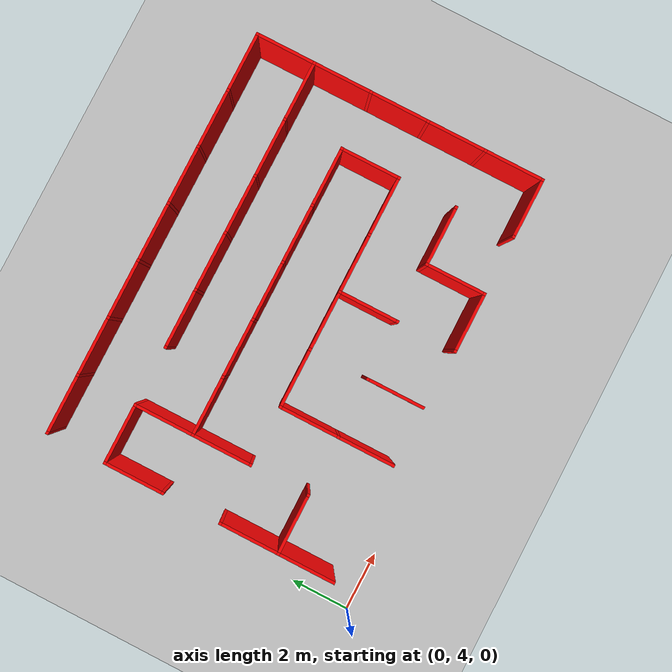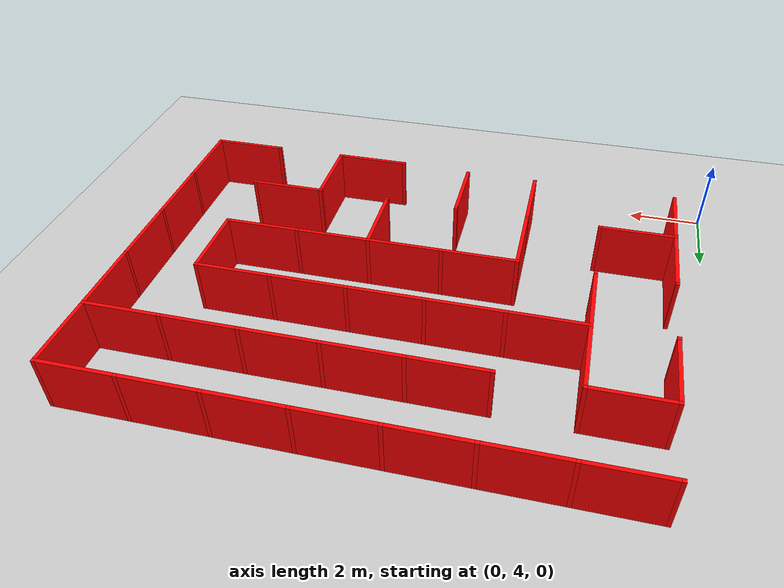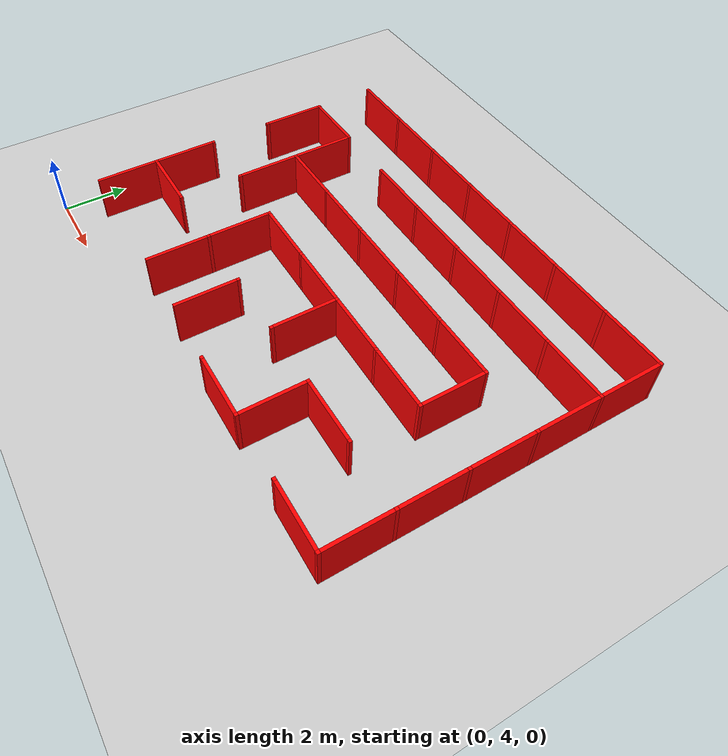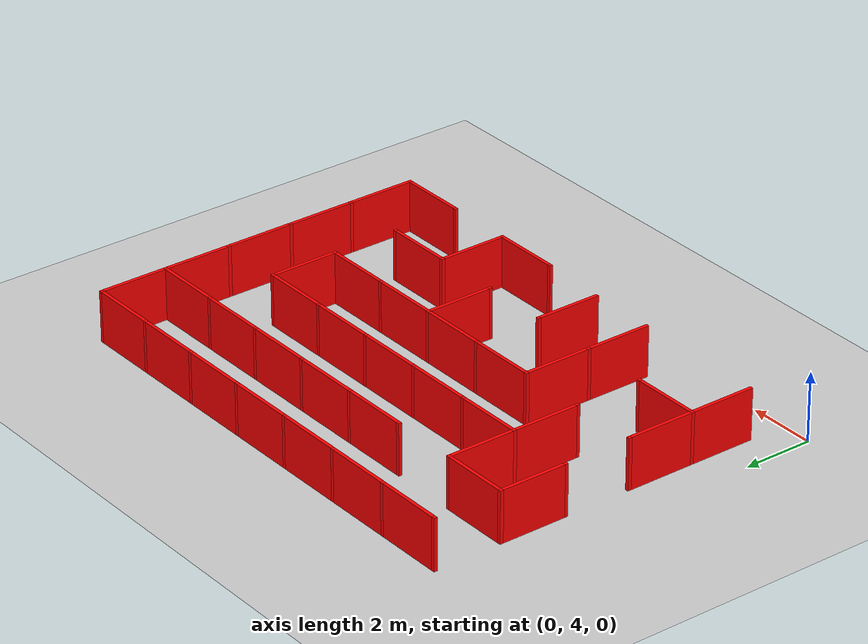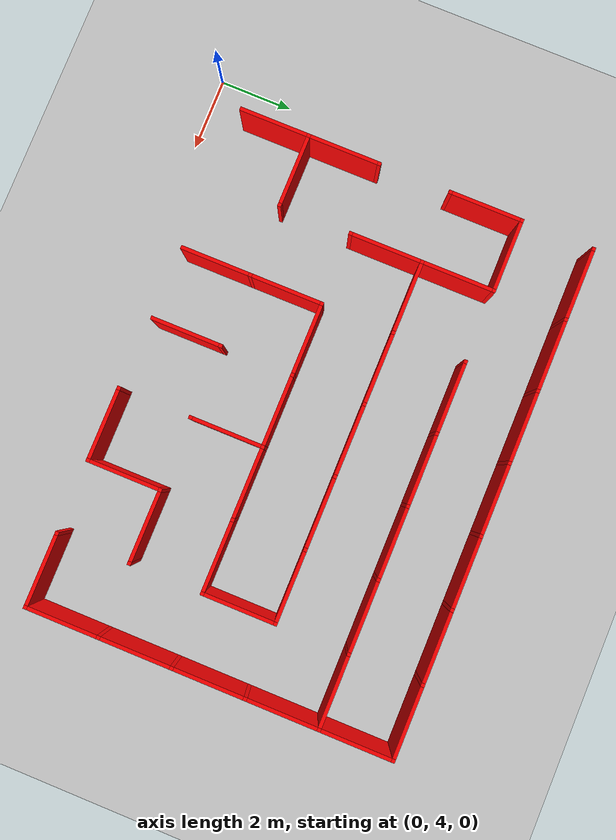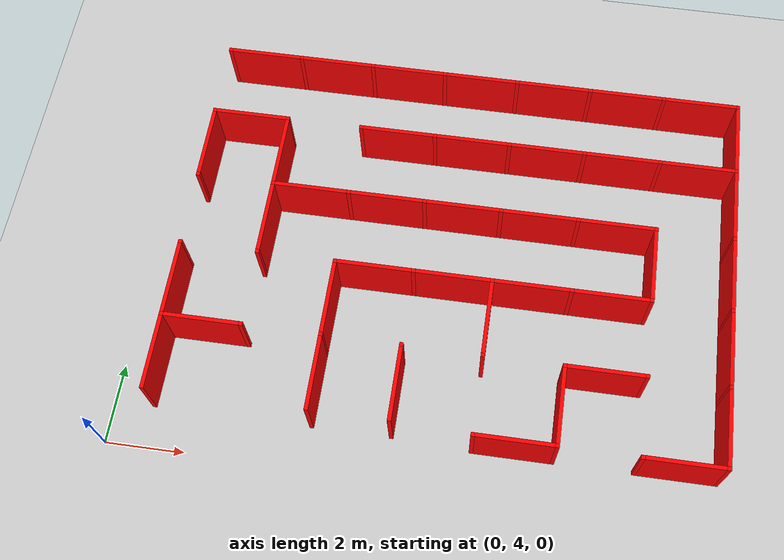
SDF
<sdf version="1.7">
 <world name="empty">
  <model name="ground_plane">
   <static>true</static>
   <link name="link">
    <collision name="collision1">
     <geometry><plane><normal>0 0 1</normal><size>1 1</size></plane></geometry>
    </collision>
    <visual name="visual1"><geometry><plane><normal>0 0 1</normal><size>100 100</size></plane></geometry></visual>
   </link>
  </model>
  <model name="Untitled">
   <link name="Wall_8_0_h">
    <collision name="Wall_0_Collision">
     <geometry><box><size>1.9 0.1 1.5</size></box></geometry>
     <pose>0 0 0.75 0 -0 0</pose>
    </collision>
    <visual name="Wall_0_Visual">
     <pose>0 0 0.75 0 -0 0</pose>
     <geometry><box><size>1.9 0.1 1.5</size></box></geometry>
     <material><ambient>1 0 0 1</ambient><diffuse>1 0 0 1</diffuse><specular>0.1 0.1 0.1 1</specular></material>
     <meta><layer>0</layer></meta>
    </visual>
    <pose>2 15 0 0 -0 0</pose>
   </link>
   <link name="Joint_1_15">
    <collision name="Wall_2_Collision">
     <geometry><box><size>0.1 0.1 1.5</size></box></geometry>
     <pose>0 0 0.75 0 -0 0</pose>
    </collision>
    <visual name="Wall_2_Visual">
     <pose>0 0 0.75 0 -0 0</pose>
     <geometry><box><size>0.1 0.1 1.5</size></box></geometry>
     <material><ambient>1 0 0 1</ambient><diffuse>1 0 0 1</diffuse><specular>0.1 0.1 0.1 1</specular></material>
     <meta><layer>0</layer></meta>
    </visual>
    <pose>1 15 0 0 -0 0</pose>
   </link>
   <link name="Wall_9_0_h">
    <collision name="Wall_0_Collision">
     <geometry><box><size>1.9 0.1 1.5</size></box></geometry>
     <pose>0 0 0.75 0 -0 0</pose>
    </collision>
    <visual name="Wall_0_Visual">
     <pose>0 0 0.75 0 -0 0</pose>
     <geometry><box><size>1.9 0.1 1.5</size></box></geometry>
     <material><ambient>1 0 0 1</ambient><diffuse>1 0 0 1</diffuse><specular>0.1 0.1 0.1 1</specular></material>
     <meta><layer>0</layer></meta>
    </visual>
    <pose>4 15 0 0 -0 0</pose>
   </link>
   <link name="Joint_3_15">
    <collision name="Wall_2_Collision">
     <geometry><box><size>0.1 0.1 1.5</size></box></geometry>
     <pose>0 0 0.75 0 -0 0</pose>
    </collision>
    <visual name="Wall_2_Visual">
     <pose>0 0 0.75 0 -0 0</pose>
     <geometry><box><size>0.1 0.1 1.5</size></box></geometry>
     <material><ambient>1 0 0 1</ambient><diffuse>1 0 0 1</diffuse><specular>0.1 0.1 0.1 1</specular></material>
     <meta><layer>0</layer></meta>
    </visual>
    <pose>3 15 0 0 -0 0</pose>
   </link>
   <link name="Wall_10_0_h">
    <collision name="Wall_0_Collision">
     <geometry><box><size>1.9 0.1 1.5</size></box></geometry>
     <pose>0 0 0.75 0 -0 0</pose>
    </collision>
    <visual name="Wall_0_Visual">
     <pose>0 0 0.75 0 -0 0</pose>
     <geometry><box><size>1.9 0.1 1.5</size></box></geometry>
     <material><ambient>1 0 0 1</ambient><diffuse>1 0 0 1</diffuse><specular>0.1 0.1 0.1 1</specular></material>
     <meta><layer>0</layer></meta>
    </visual>
    <pose>6 15 0 0 -0 0</pose>
   </link>
   <link name="Joint_5_15">
    <collision name="Wall_2_Collision">
     <geometry><box><size>0.1 0.1 1.5</size></box></geometry>
     <pose>0 0 0.75 0 -0 0</pose>
    </collision>
    <visual name="Wall_2_Visual">
     <pose>0 0 0.75 0 -0 0</pose>
     <geometry><box><size>0.1 0.1 1.5</size></box></geometry>
     <material><ambient>1 0 0 1</ambient><diffuse>1 0 0 1</diffuse><specular>0.1 0.1 0.1 1</specular></material>
     <meta><layer>0</layer></meta>
    </visual>
    <pose>5 15 0 0 -0 0</pose>
   </link>
   <link name="Wall_11_0_h">
    <collision name="Wall_0_Collision">
     <geometry><box><size>1.9 0.1 1.5</size></box></geometry>
     <pose>0 0 0.75 0 -0 0</pose>
    </collision>
    <visual name="Wall_0_Visual">
     <pose>0 0 0.75 0 -0 0</pose>
     <geometry><box><size>1.9 0.1 1.5</size></box></geometry>
     <material><ambient>1 0 0 1</ambient><diffuse>1 0 0 1</diffuse><specular>0.1 0.1 0.1 1</specular></material>
     <meta><layer>0</layer></meta>
    </visual>
    <pose>8 15 0 0 -0 0</pose>
   </link>
   <link name="Joint_7_15">
    <collision name="Wall_2_Collision">
     <geometry><box><size>0.1 0.1 1.5</size></box></geometry>
     <pose>0 0 0.75 0 -0 0</pose>
    </collision>
    <visual name="Wall_2_Visual">
     <pose>0 0 0.75 0 -0 0</pose>
     <geometry><box><size>0.1 0.1 1.5</size></box></geometry>
     <material><ambient>1 0 0 1</ambient><diffuse>1 0 0 1</diffuse><specular>0.1 0.1 0.1 1</specular></material>
     <meta><layer>0</layer></meta>
    </visual>
    <pose>7 15 0 0 -0 0</pose>
   </link>
   <link name="Wall_12_0_h">
    <collision name="Wall_0_Collision">
     <geometry><box><size>1.9 0.1 1.5</size></box></geometry>
     <pose>0 0 0.75 0 -0 0</pose>
    </collision>
    <visual name="Wall_0_Visual">
     <pose>0 0 0.75 0 -0 0</pose>
     <geometry><box><size>1.9 0.1 1.5</size></box></geometry>
     <material><ambient>1 0 0 1</ambient><diffuse>1 0 0 1</diffuse><specular>0.1 0.1 0.1 1</specular></material>
     <meta><layer>0</layer></meta>
    </visual>
    <pose>10 15 0 0 -0 0</pose>
   </link>
   <link name="Joint_9_15">
    <collision name="Wall_2_Collision">
     <geometry><box><size>0.1 0.1 1.5</size></box></geometry>
     <pose>0 0 0.75 0 -0 0</pose>
    </collision>
    <visual name="Wall_2_Visual">
     <pose>0 0 0.75 0 -0 0</pose>
     <geometry><box><size>0.1 0.1 1.5</size></box></geometry>
     <material><ambient>1 0 0 1</ambient><diffuse>1 0 0 1</diffuse><specular>0.1 0.1 0.1 1</specular></material>
     <meta><layer>0</layer></meta>
    </visual>
    <pose>9 15 0 0 -0 0</pose>
   </link>
   <link name="Wall_13_0_h">
    <collision name="Wall_0_Collision">
     <geometry><box><size>1.9 0.1 1.5</size></box></geometry>
     <pose>0 0 0.75 0 -0 0</pose>
    </collision>
    <visual name="Wall_0_Visual">
     <pose>0 0 0.75 0 -0 0</pose>
     <geometry><box><size>1.9 0.1 1.5</size></box></geometry>
     <material><ambient>1 0 0 1</ambient><diffuse>1 0 0 1</diffuse><specular>0.1 0.1 0.1 1</specular></material>
     <meta><layer>0</layer></meta>
    </visual>
    <pose>12 15 0 0 -0 0</pose>
   </link>
   <link name="Joint_11_15">
    <collision name="Wall_2_Collision">
     <geometry><box><size>0.1 0.1 1.5</size></box></geometry>
     <pose>0 0 0.75 0 -0 0</pose>
    </collision>
    <visual name="Wall_2_Visual">
     <pose>0 0 0.75 0 -0 0</pose>
     <geometry><box><size>0.1 0.1 1.5</size></box></geometry>
     <material><ambient>1 0 0 1</ambient><diffuse>1 0 0 1</diffuse><specular>0.1 0.1 0.1 1</specular></material>
     <meta><layer>0</layer></meta>
    </visual>
    <pose>11 15 0 0 -0 0</pose>
   </link>
   <link name="Wall_14_0_h">
    <collision name="Wall_0_Collision">
     <geometry><box><size>1.9 0.1 1.5</size></box></geometry>
     <pose>0 0 0.75 0 -0 0</pose>
    </collision>
    <visual name="Wall_0_Visual">
     <pose>0 0 0.75 0 -0 0</pose>
     <geometry><box><size>1.9 0.1 1.5</size></box></geometry>
     <material><ambient>1 0 0 1</ambient><diffuse>1 0 0 1</diffuse><specular>0.1 0.1 0.1 1</specular></material>
     <meta><layer>0</layer></meta>
    </visual>
    <pose>14 15 0 0 -0 0</pose>
   </link>
   <link name="Joint_13_15">
    <collision name="Wall_2_Collision">
     <geometry><box><size>0.1 0.1 1.5</size></box></geometry>
     <pose>0 0 0.75 0 -0 0</pose>
    </collision>
    <visual name="Wall_2_Visual">
     <pose>0 0 0.75 0 -0 0</pose>
     <geometry><box><size>0.1 0.1 1.5</size></box></geometry>
     <material><ambient>1 0 0 1</ambient><diffuse>1 0 0 1</diffuse><specular>0.1 0.1 0.1 1</specular></material>
     <meta><layer>0</layer></meta>
    </visual>
    <pose>13 15 0 0 -0 0</pose>
   </link>
   <link name="Wall_15_0_v">
    <collision name="Wall_0_Collision">
     <geometry><box><size>1.9 0.1 1.5</size></box></geometry>
     <pose>0 0 0.75 0 -0 0</pose>
    </collision>
    <visual name="Wall_0_Visual">
     <pose>0 0 0.75 0 -0 0</pose>
     <geometry><box><size>1.9 0.1 1.5</size></box></geometry>
     <material><ambient>1 0 0 1</ambient><diffuse>1 0 0 1</diffuse><specular>0.1 0.1 0.1 1</specular></material>
     <meta><layer>0</layer></meta>
    </visual>
    <pose>15 14 0 0 -0 1.5708</pose>
   </link>
   <link name="Joint_15_15">
    <collision name="Wall_2_Collision">
     <geometry><box><size>0.1 0.1 1.5</size></box></geometry>
     <pose>0 0 0.75 0 -0 0</pose>
    </collision>
    <visual name="Wall_2_Visual">
     <pose>0 0 0.75 0 -0 0</pose>
     <geometry><box><size>0.1 0.1 1.5</size></box></geometry>
     <material><ambient>1 0 0 1</ambient><diffuse>1 0 0 1</diffuse><specular>0.1 0.1 0.1 1</specular></material>
     <meta><layer>0</layer></meta>
    </visual>
    <pose>15 15 0 0 -0 0</pose>
   </link>
   <link name="Wall_8_1_h">
    <collision name="Wall_0_Collision">
     <geometry><box><size>1.9 0.1 1.5</size></box></geometry>
     <pose>0 0 0.75 0 -0 0</pose>
    </collision>
    <visual name="Wall_0_Visual">
     <pose>0 0 0.75 0 -0 0</pose>
     <geometry><box><size>1.9 0.1 1.5</size></box></geometry>
     <material><ambient>1 0 0 1</ambient><diffuse>1 0 0 1</diffuse><specular>0.1 0.1 0.1 1</specular></material>
     <meta><layer>0</layer></meta>
    </visual>
    <pose>2 13 0 0 -0 0</pose>
   </link>
   <link name="Wall_8_1_v">
    <collision name="Wall_0_Collision">
     <geometry><box><size>1.9 0.1 1.5</size></box></geometry>
     <pose>0 0 0.75 0 -0 0</pose>
    </collision>
    <visual name="Wall_0_Visual">
     <pose>0 0 0.75 0 -0 0</pose>
     <geometry><box><size>1.9 0.1 1.5</size></box></geometry>
     <material><ambient>1 0 0 1</ambient><diffuse>1 0 0 1</diffuse><specular>0.1 0.1 0.1 1</specular></material>
     <meta><layer>0</layer></meta>
    </visual>
    <pose>1 12 0 0 -0 1.5708</pose>
   </link>
   <link name="Joint_1_13">
    <collision name="Wall_2_Collision">
     <geometry><box><size>0.1 0.1 1.5</size></box></geometry>
     <pose>0 0 0.75 0 -0 0</pose>
    </collision>
    <visual name="Wall_2_Visual">
     <pose>0 0 0.75 0 -0 0</pose>
     <geometry><box><size>0.1 0.1 1.5</size></box></geometry>
     <material><ambient>1 0 0 1</ambient><diffuse>1 0 0 1</diffuse><specular>0.1 0.1 0.1 1</specular></material>
     <meta><layer>0</layer></meta>
    </visual>
    <pose>1 13 0 0 -0 0</pose>
   </link>
   <link name="Wall_9_1_v">
    <collision name="Wall_0_Collision">
     <geometry><box><size>1.9 0.1 1.5</size></box></geometry>
     <pose>0 0 0.75 0 -0 0</pose>
    </collision>
    <visual name="Wall_0_Visual">
     <pose>0 0 0.75 0 -0 0</pose>
     <geometry><box><size>1.9 0.1 1.5</size></box></geometry>
     <material><ambient>1 0 0 1</ambient><diffuse>1 0 0 1</diffuse><specular>0.1 0.1 0.1 1</specular></material>
     <meta><layer>0</layer></meta>
    </visual>
    <pose>3 12 0 0 -0 1.5708</pose>
   </link>
   <link name="Joint_3_13">
    <collision name="Wall_2_Collision">
     <geometry><box><size>0.1 0.1 1.5</size></box></geometry>
     <pose>0 0 0.75 0 -0 0</pose>
    </collision>
    <visual name="Wall_2_Visual">
     <pose>0 0 0.75 0 -0 0</pose>
     <geometry><box><size>0.1 0.1 1.5</size></box></geometry>
     <material><ambient>1 0 0 1</ambient><diffuse>1 0 0 1</diffuse><specular>0.1 0.1 0.1 1</specular></material>
     <meta><layer>0</layer></meta>
    </visual>
    <pose>3 13 0 0 -0 0</pose>
   </link>
   <link name="Wall_10_1_h">
    <collision name="Wall_0_Collision">
     <geometry><box><size>1.9 0.1 1.5</size></box></geometry>
     <pose>0 0 0.75 0 -0 0</pose>
    </collision>
    <visual name="Wall_0_Visual">
     <pose>0 0 0.75 0 -0 0</pose>
     <geometry><box><size>1.9 0.1 1.5</size></box></geometry>
     <material><ambient>1 0 0 1</ambient><diffuse>1 0 0 1</diffuse><specular>0.1 0.1 0.1 1</specular></material>
     <meta><layer>0</layer></meta>
    </visual>
    <pose>6 13 0 0 -0 0</pose>
   </link>
   <link name="Joint_5_13">
    <collision name="Wall_2_Collision">
     <geometry><box><size>0.1 0.1 1.5</size></box></geometry>
     <pose>0 0 0.75 0 -0 0</pose>
    </collision>
    <visual name="Wall_2_Visual">
     <pose>0 0 0.75 0 -0 0</pose>
     <geometry><box><size>0.1 0.1 1.5</size></box></geometry>
     <material><ambient>1 0 0 1</ambient><diffuse>1 0 0 1</diffuse><specular>0.1 0.1 0.1 1</specular></material>
     <meta><layer>0</layer></meta>
    </visual>
    <pose>5 13 0 0 -0 0</pose>
   </link>
   <link name="Wall_11_1_h">
    <collision name="Wall_0_Collision">
     <geometry><box><size>1.9 0.1 1.5</size></box></geometry>
     <pose>0 0 0.75 0 -0 0</pose>
    </collision>
    <visual name="Wall_0_Visual">
     <pose>0 0 0.75 0 -0 0</pose>
     <geometry><box><size>1.9 0.1 1.5</size></box></geometry>
     <material><ambient>1 0 0 1</ambient><diffuse>1 0 0 1</diffuse><specular>0.1 0.1 0.1 1</specular></material>
     <meta><layer>0</layer></meta>
    </visual>
    <pose>8 13 0 0 -0 0</pose>
   </link>
   <link name="Joint_7_13">
    <collision name="Wall_2_Collision">
     <geometry><box><size>0.1 0.1 1.5</size></box></geometry>
     <pose>0 0 0.75 0 -0 0</pose>
    </collision>
    <visual name="Wall_2_Visual">
     <pose>0 0 0.75 0 -0 0</pose>
     <geometry><box><size>0.1 0.1 1.5</size></box></geometry>
     <material><ambient>1 0 0 1</ambient><diffuse>1 0 0 1</diffuse><specular>0.1 0.1 0.1 1</specular></material>
     <meta><layer>0</layer></meta>
    </visual>
    <pose>7 13 0 0 -0 0</pose>
   </link>
   <link name="Wall_12_1_h">
    <collision name="Wall_0_Collision">
     <geometry><box><size>1.9 0.1 1.5</size></box></geometry>
     <pose>0 0 0.75 0 -0 0</pose>
    </collision>
    <visual name="Wall_0_Visual">
     <pose>0 0 0.75 0 -0 0</pose>
     <geometry><box><size>1.9 0.1 1.5</size></box></geometry>
     <material><ambient>1 0 0 1</ambient><diffuse>1 0 0 1</diffuse><specular>0.1 0.1 0.1 1</specular></material>
     <meta><layer>0</layer></meta>
    </visual>
    <pose>10 13 0 0 -0 0</pose>
   </link>
   <link name="Joint_9_13">
    <collision name="Wall_2_Collision">
     <geometry><box><size>0.1 0.1 1.5</size></box></geometry>
     <pose>0 0 0.75 0 -0 0</pose>
    </collision>
    <visual name="Wall_2_Visual">
     <pose>0 0 0.75 0 -0 0</pose>
     <geometry><box><size>0.1 0.1 1.5</size></box></geometry>
     <material><ambient>1 0 0 1</ambient><diffuse>1 0 0 1</diffuse><specular>0.1 0.1 0.1 1</specular></material>
     <meta><layer>0</layer></meta>
    </visual>
    <pose>9 13 0 0 -0 0</pose>
   </link>
   <link name="Wall_13_1_h">
    <collision name="Wall_0_Collision">
     <geometry><box><size>1.9 0.1 1.5</size></box></geometry>
     <pose>0 0 0.75 0 -0 0</pose>
    </collision>
    <visual name="Wall_0_Visual">
     <pose>0 0 0.75 0 -0 0</pose>
     <geometry><box><size>1.9 0.1 1.5</size></box></geometry>
     <material><ambient>1 0 0 1</ambient><diffuse>1 0 0 1</diffuse><specular>0.1 0.1 0.1 1</specular></material>
     <meta><layer>0</layer></meta>
    </visual>
    <pose>12 13 0 0 -0 0</pose>
   </link>
   <link name="Joint_11_13">
    <collision name="Wall_2_Collision">
     <geometry><box><size>0.1 0.1 1.5</size></box></geometry>
     <pose>0 0 0.75 0 -0 0</pose>
    </collision>
    <visual name="Wall_2_Visual">
     <pose>0 0 0.75 0 -0 0</pose>
     <geometry><box><size>0.1 0.1 1.5</size></box></geometry>
     <material><ambient>1 0 0 1</ambient><diffuse>1 0 0 1</diffuse><specular>0.1 0.1 0.1 1</specular></material>
     <meta><layer>0</layer></meta>
    </visual>
    <pose>11 13 0 0 -0 0</pose>
   </link>
   <link name="Wall_14_1_h">
    <collision name="Wall_0_Collision">
     <geometry><box><size>1.9 0.1 1.5</size></box></geometry>
     <pose>0 0 0.75 0 -0 0</pose>
    </collision>
    <visual name="Wall_0_Visual">
     <pose>0 0 0.75 0 -0 0</pose>
     <geometry><box><size>1.9 0.1 1.5</size></box></geometry>
     <material><ambient>1 0 0 1</ambient><diffuse>1 0 0 1</diffuse><specular>0.1 0.1 0.1 1</specular></material>
     <meta><layer>0</layer></meta>
    </visual>
    <pose>14 13 0 0 -0 0</pose>
   </link>
   <link name="Joint_13_13">
    <collision name="Wall_2_Collision">
     <geometry><box><size>0.1 0.1 1.5</size></box></geometry>
     <pose>0 0 0.75 0 -0 0</pose>
    </collision>
    <visual name="Wall_2_Visual">
     <pose>0 0 0.75 0 -0 0</pose>
     <geometry><box><size>0.1 0.1 1.5</size></box></geometry>
     <material><ambient>1 0 0 1</ambient><diffuse>1 0 0 1</diffuse><specular>0.1 0.1 0.1 1</specular></material>
     <meta><layer>0</layer></meta>
    </visual>
    <pose>13 13 0 0 -0 0</pose>
   </link>
   <link name="Wall_15_1_v">
    <collision name="Wall_0_Collision">
     <geometry><box><size>1.9 0.1 1.5</size></box></geometry>
     <pose>0 0 0.75 0 -0 0</pose>
    </collision>
    <visual name="Wall_0_Visual">
     <pose>0 0 0.75 0 -0 0</pose>
     <geometry><box><size>1.9 0.1 1.5</size></box></geometry>
     <material><ambient>1 0 0 1</ambient><diffuse>1 0 0 1</diffuse><specular>0.1 0.1 0.1 1</specular></material>
     <meta><layer>0</layer></meta>
    </visual>
    <pose>15 12 0 0 -0 1.5708</pose>
   </link>
   <link name="Joint_15_13">
    <collision name="Wall_2_Collision">
     <geometry><box><size>0.1 0.1 1.5</size></box></geometry>
     <pose>0 0 0.75 0 -0 0</pose>
    </collision>
    <visual name="Wall_2_Visual">
     <pose>0 0 0.75 0 -0 0</pose>
     <geometry><box><size>0.1 0.1 1.5</size></box></geometry>
     <material><ambient>1 0 0 1</ambient><diffuse>1 0 0 1</diffuse><specular>0.1 0.1 0.1 1</specular></material>
     <meta><layer>0</layer></meta>
    </visual>
    <pose>15 13 0 0 -0 0</pose>
   </link>
   <link name="Joint_1_11">
    <collision name="Wall_2_Collision">
     <geometry><box><size>0.1 0.1 1.5</size></box></geometry>
     <pose>0 0 0.75 0 -0 0</pose>
    </collision>
    <visual name="Wall_2_Visual">
     <pose>0 0 0.75 0 -0 0</pose>
     <geometry><box><size>0.1 0.1 1.5</size></box></geometry>
     <material><ambient>1 0 0 1</ambient><diffuse>1 0 0 1</diffuse><specular>0.1 0.1 0.1 1</specular></material>
     <meta><layer>0</layer></meta>
    </visual>
    <pose>1 11 0 0 -0 0</pose>
   </link>
   <link name="Wall_9_2_h">
    <collision name="Wall_0_Collision">
     <geometry><box><size>1.9 0.1 1.5</size></box></geometry>
     <pose>0 0 0.75 0 -0 0</pose>
    </collision>
    <visual name="Wall_0_Visual">
     <pose>0 0 0.75 0 -0 0</pose>
     <geometry><box><size>1.9 0.1 1.5</size></box></geometry>
     <material><ambient>1 0 0 1</ambient><diffuse>1 0 0 1</diffuse><specular>0.1 0.1 0.1 1</specular></material>
     <meta><layer>0</layer></meta>
    </visual>
    <pose>4 11 0 0 -0 0</pose>
   </link>
   <link name="Wall_9_2_v">
    <collision name="Wall_0_Collision">
     <geometry><box><size>1.9 0.1 1.5</size></box></geometry>
     <pose>0 0 0.75 0 -0 0</pose>
    </collision>
    <visual name="Wall_0_Visual">
     <pose>0 0 0.75 0 -0 0</pose>
     <geometry><box><size>1.9 0.1 1.5</size></box></geometry>
     <material><ambient>1 0 0 1</ambient><diffuse>1 0 0 1</diffuse><specular>0.1 0.1 0.1 1</specular></material>
     <meta><layer>0</layer></meta>
    </visual>
    <pose>3 10 0 0 -0 1.5708</pose>
   </link>
   <link name="Joint_3_11">
    <collision name="Wall_2_Collision">
     <geometry><box><size>0.1 0.1 1.5</size></box></geometry>
     <pose>0 0 0.75 0 -0 0</pose>
    </collision>
    <visual name="Wall_2_Visual">
     <pose>0 0 0.75 0 -0 0</pose>
     <geometry><box><size>0.1 0.1 1.5</size></box></geometry>
     <material><ambient>1 0 0 1</ambient><diffuse>1 0 0 1</diffuse><specular>0.1 0.1 0.1 1</specular></material>
     <meta><layer>0</layer></meta>
    </visual>
    <pose>3 11 0 0 -0 0</pose>
   </link>
   <link name="Wall_10_2_h">
    <collision name="Wall_0_Collision">
     <geometry><box><size>1.9 0.1 1.5</size></box></geometry>
     <pose>0 0 0.75 0 -0 0</pose>
    </collision>
    <visual name="Wall_0_Visual">
     <pose>0 0 0.75 0 -0 0</pose>
     <geometry><box><size>1.9 0.1 1.5</size></box></geometry>
     <material><ambient>1 0 0 1</ambient><diffuse>1 0 0 1</diffuse><specular>0.1 0.1 0.1 1</specular></material>
     <meta><layer>0</layer></meta>
    </visual>
    <pose>6 11 0 0 -0 0</pose>
   </link>
   <link name="Joint_5_11">
    <collision name="Wall_2_Collision">
     <geometry><box><size>0.1 0.1 1.5</size></box></geometry>
     <pose>0 0 0.75 0 -0 0</pose>
    </collision>
    <visual name="Wall_2_Visual">
     <pose>0 0 0.75 0 -0 0</pose>
     <geometry><box><size>0.1 0.1 1.5</size></box></geometry>
     <material><ambient>1 0 0 1</ambient><diffuse>1 0 0 1</diffuse><specular>0.1 0.1 0.1 1</specular></material>
     <meta><layer>0</layer></meta>
    </visual>
    <pose>5 11 0 0 -0 0</pose>
   </link>
   <link name="Wall_11_2_h">
    <collision name="Wall_0_Collision">
     <geometry><box><size>1.9 0.1 1.5</size></box></geometry>
     <pose>0 0 0.75 0 -0 0</pose>
    </collision>
    <visual name="Wall_0_Visual">
     <pose>0 0 0.75 0 -0 0</pose>
     <geometry><box><size>1.9 0.1 1.5</size></box></geometry>
     <material><ambient>1 0 0 1</ambient><diffuse>1 0 0 1</diffuse><specular>0.1 0.1 0.1 1</specular></material>
     <meta><layer>0</layer></meta>
    </visual>
    <pose>8 11 0 0 -0 0</pose>
   </link>
   <link name="Joint_7_11">
    <collision name="Wall_2_Collision">
     <geometry><box><size>0.1 0.1 1.5</size></box></geometry>
     <pose>0 0 0.75 0 -0 0</pose>
    </collision>
    <visual name="Wall_2_Visual">
     <pose>0 0 0.75 0 -0 0</pose>
     <geometry><box><size>0.1 0.1 1.5</size></box></geometry>
     <material><ambient>1 0 0 1</ambient><diffuse>1 0 0 1</diffuse><specular>0.1 0.1 0.1 1</specular></material>
     <meta><layer>0</layer></meta>
    </visual>
    <pose>7 11 0 0 -0 0</pose>
   </link>
   <link name="Wall_12_2_h">
    <collision name="Wall_0_Collision">
     <geometry><box><size>1.9 0.1 1.5</size></box></geometry>
     <pose>0 0 0.75 0 -0 0</pose>
    </collision>
    <visual name="Wall_0_Visual">
     <pose>0 0 0.75 0 -0 0</pose>
     <geometry><box><size>1.9 0.1 1.5</size></box></geometry>
     <material><ambient>1 0 0 1</ambient><diffuse>1 0 0 1</diffuse><specular>0.1 0.1 0.1 1</specular></material>
     <meta><layer>0</layer></meta>
    </visual>
    <pose>10 11 0 0 -0 0</pose>
   </link>
   <link name="Joint_9_11">
    <collision name="Wall_2_Collision">
     <geometry><box><size>0.1 0.1 1.5</size></box></geometry>
     <pose>0 0 0.75 0 -0 0</pose>
    </collision>
    <visual name="Wall_2_Visual">
     <pose>0 0 0.75 0 -0 0</pose>
     <geometry><box><size>0.1 0.1 1.5</size></box></geometry>
     <material><ambient>1 0 0 1</ambient><diffuse>1 0 0 1</diffuse><specular>0.1 0.1 0.1 1</specular></material>
     <meta><layer>0</layer></meta>
    </visual>
    <pose>9 11 0 0 -0 0</pose>
   </link>
   <link name="Wall_13_2_h">
    <collision name="Wall_0_Collision">
     <geometry><box><size>1.9 0.1 1.5</size></box></geometry>
     <pose>0 0 0.75 0 -0 0</pose>
    </collision>
    <visual name="Wall_0_Visual">
     <pose>0 0 0.75 0 -0 0</pose>
     <geometry><box><size>1.9 0.1 1.5</size></box></geometry>
     <material><ambient>1 0 0 1</ambient><diffuse>1 0 0 1</diffuse><specular>0.1 0.1 0.1 1</specular></material>
     <meta><layer>0</layer></meta>
    </visual>
    <pose>12 11 0 0 -0 0</pose>
   </link>
   <link name="Joint_11_11">
    <collision name="Wall_2_Collision">
     <geometry><box><size>0.1 0.1 1.5</size></box></geometry>
     <pose>0 0 0.75 0 -0 0</pose>
    </collision>
    <visual name="Wall_2_Visual">
     <pose>0 0 0.75 0 -0 0</pose>
     <geometry><box><size>0.1 0.1 1.5</size></box></geometry>
     <material><ambient>1 0 0 1</ambient><diffuse>1 0 0 1</diffuse><specular>0.1 0.1 0.1 1</specular></material>
     <meta><layer>0</layer></meta>
    </visual>
    <pose>11 11 0 0 -0 0</pose>
   </link>
   <link name="Wall_14_2_v">
    <collision name="Wall_0_Collision">
     <geometry><box><size>1.9 0.1 1.5</size></box></geometry>
     <pose>0 0 0.75 0 -0 0</pose>
    </collision>
    <visual name="Wall_0_Visual">
     <pose>0 0 0.75 0 -0 0</pose>
     <geometry><box><size>1.9 0.1 1.5</size></box></geometry>
     <material><ambient>1 0 0 1</ambient><diffuse>1 0 0 1</diffuse><specular>0.1 0.1 0.1 1</specular></material>
     <meta><layer>0</layer></meta>
    </visual>
    <pose>13 10 0 0 -0 1.5708</pose>
   </link>
   <link name="Joint_13_11">
    <collision name="Wall_2_Collision">
     <geometry><box><size>0.1 0.1 1.5</size></box></geometry>
     <pose>0 0 0.75 0 -0 0</pose>
    </collision>
    <visual name="Wall_2_Visual">
     <pose>0 0 0.75 0 -0 0</pose>
     <geometry><box><size>0.1 0.1 1.5</size></box></geometry>
     <material><ambient>1 0 0 1</ambient><diffuse>1 0 0 1</diffuse><specular>0.1 0.1 0.1 1</specular></material>
     <meta><layer>0</layer></meta>
    </visual>
    <pose>13 11 0 0 -0 0</pose>
   </link>
   <link name="Wall_15_2_v">
    <collision name="Wall_0_Collision">
     <geometry><box><size>1.9 0.1 1.5</size></box></geometry>
     <pose>0 0 0.75 0 -0 0</pose>
    </collision>
    <visual name="Wall_0_Visual">
     <pose>0 0 0.75 0 -0 0</pose>
     <geometry><box><size>1.9 0.1 1.5</size></box></geometry>
     <material><ambient>1 0 0 1</ambient><diffuse>1 0 0 1</diffuse><specular>0.1 0.1 0.1 1</specular></material>
     <meta><layer>0</layer></meta>
    </visual>
    <pose>15 10 0 0 -0 1.5708</pose>
   </link>
   <link name="Joint_15_11">
    <collision name="Wall_2_Collision">
     <geometry><box><size>0.1 0.1 1.5</size></box></geometry>
     <pose>0 0 0.75 0 -0 0</pose>
    </collision>
    <visual name="Wall_2_Visual">
     <pose>0 0 0.75 0 -0 0</pose>
     <geometry><box><size>0.1 0.1 1.5</size></box></geometry>
     <material><ambient>1 0 0 1</ambient><diffuse>1 0 0 1</diffuse><specular>0.1 0.1 0.1 1</specular></material>
     <meta><layer>0</layer></meta>
    </visual>
    <pose>15 11 0 0 -0 0</pose>
   </link>
   <link name="Wall_8_3_v">
    <collision name="Wall_0_Collision">
     <geometry><box><size>1.9 0.1 1.5</size></box></geometry>
     <pose>0 0 0.75 0 -0 0</pose>
    </collision>
    <visual name="Wall_0_Visual">
     <pose>0 0 0.75 0 -0 0</pose>
     <geometry><box><size>1.9 0.1 1.5</size></box></geometry>
     <material><ambient>1 0 0 1</ambient><diffuse>1 0 0 1</diffuse><specular>0.1 0.1 0.1 1</specular></material>
     <meta><layer>0</layer></meta>
    </visual>
    <pose>1 8 0 0 -0 1.5708</pose>
   </link>
   <link name="Joint_1_9">
    <collision name="Wall_2_Collision">
     <geometry><box><size>0.1 0.1 1.5</size></box></geometry>
     <pose>0 0 0.75 0 -0 0</pose>
    </collision>
    <visual name="Wall_2_Visual">
     <pose>0 0 0.75 0 -0 0</pose>
     <geometry><box><size>0.1 0.1 1.5</size></box></geometry>
     <material><ambient>1 0 0 1</ambient><diffuse>1 0 0 1</diffuse><specular>0.1 0.1 0.1 1</specular></material>
     <meta><layer>0</layer></meta>
    </visual>
    <pose>1 9 0 0 -0 0</pose>
   </link>
   <link name="Joint_3_9">
    <collision name="Wall_2_Collision">
     <geometry><box><size>0.1 0.1 1.5</size></box></geometry>
     <pose>0 0 0.75 0 -0 0</pose>
    </collision>
    <visual name="Wall_2_Visual">
     <pose>0 0 0.75 0 -0 0</pose>
     <geometry><box><size>0.1 0.1 1.5</size></box></geometry>
     <material><ambient>1 0 0 1</ambient><diffuse>1 0 0 1</diffuse><specular>0.1 0.1 0.1 1</specular></material>
     <meta><layer>0</layer></meta>
    </visual>
    <pose>3 9 0 0 -0 0</pose>
   </link>
   <link name="Wall_10_3_h">
    <collision name="Wall_0_Collision">
     <geometry><box><size>1.9 0.1 1.5</size></box></geometry>
     <pose>0 0 0.75 0 -0 0</pose>
    </collision>
    <visual name="Wall_0_Visual">
     <pose>0 0 0.75 0 -0 0</pose>
     <geometry><box><size>1.9 0.1 1.5</size></box></geometry>
     <material><ambient>1 0 0 1</ambient><diffuse>1 0 0 1</diffuse><specular>0.1 0.1 0.1 1</specular></material>
     <meta><layer>0</layer></meta>
    </visual>
    <pose>6 9 0 0 -0 0</pose>
   </link>
   <link name="Wall_10_3_v">
    <collision name="Wall_0_Collision">
     <geometry><box><size>1.9 0.1 1.5</size></box></geometry>
     <pose>0 0 0.75 0 -0 0</pose>
    </collision>
    <visual name="Wall_0_Visual">
     <pose>0 0 0.75 0 -0 0</pose>
     <geometry><box><size>1.9 0.1 1.5</size></box></geometry>
     <material><ambient>1 0 0 1</ambient><diffuse>1 0 0 1</diffuse><specular>0.1 0.1 0.1 1</specular></material>
     <meta><layer>0</layer></meta>
    </visual>
    <pose>5 8 0 0 -0 1.5708</pose>
   </link>
   <link name="Joint_5_9">
    <collision name="Wall_2_Collision">
     <geometry><box><size>0.1 0.1 1.5</size></box></geometry>
     <pose>0 0 0.75 0 -0 0</pose>
    </collision>
    <visual name="Wall_2_Visual">
     <pose>0 0 0.75 0 -0 0</pose>
     <geometry><box><size>0.1 0.1 1.5</size></box></geometry>
     <material><ambient>1 0 0 1</ambient><diffuse>1 0 0 1</diffuse><specular>0.1 0.1 0.1 1</specular></material>
     <meta><layer>0</layer></meta>
    </visual>
    <pose>5 9 0 0 -0 0</pose>
   </link>
   <link name="Wall_11_3_h">
    <collision name="Wall_0_Collision">
     <geometry><box><size>1.9 0.1 1.5</size></box></geometry>
     <pose>0 0 0.75 0 -0 0</pose>
    </collision>
    <visual name="Wall_0_Visual">
     <pose>0 0 0.75 0 -0 0</pose>
     <geometry><box><size>1.9 0.1 1.5</size></box></geometry>
     <material><ambient>1 0 0 1</ambient><diffuse>1 0 0 1</diffuse><specular>0.1 0.1 0.1 1</specular></material>
     <meta><layer>0</layer></meta>
    </visual>
    <pose>8 9 0 0 -0 0</pose>
   </link>
   <link name="Joint_7_9">
    <collision name="Wall_2_Collision">
     <geometry><box><size>0.1 0.1 1.5</size></box></geometry>
     <pose>0 0 0.75 0 -0 0</pose>
    </collision>
    <visual name="Wall_2_Visual">
     <pose>0 0 0.75 0 -0 0</pose>
     <geometry><box><size>0.1 0.1 1.5</size></box></geometry>
     <material><ambient>1 0 0 1</ambient><diffuse>1 0 0 1</diffuse><specular>0.1 0.1 0.1 1</specular></material>
     <meta><layer>0</layer></meta>
    </visual>
    <pose>7 9 0 0 -0 0</pose>
   </link>
   <link name="Wall_12_3_h">
    <collision name="Wall_0_Collision">
     <geometry><box><size>1.9 0.1 1.5</size></box></geometry>
     <pose>0 0 0.75 0 -0 0</pose>
    </collision>
    <visual name="Wall_0_Visual">
     <pose>0 0 0.75 0 -0 0</pose>
     <geometry><box><size>1.9 0.1 1.5</size></box></geometry>
     <material><ambient>1 0 0 1</ambient><diffuse>1 0 0 1</diffuse><specular>0.1 0.1 0.1 1</specular></material>
     <meta><layer>0</layer></meta>
    </visual>
    <pose>10 9 0 0 -0 0</pose>
   </link>
   <link name="Wall_12_3_v">
    <collision name="Wall_0_Collision">
     <geometry><box><size>1.9 0.1 1.5</size></box></geometry>
     <pose>0 0 0.75 0 -0 0</pose>
    </collision>
    <visual name="Wall_0_Visual">
     <pose>0 0 0.75 0 -0 0</pose>
     <geometry><box><size>1.9 0.1 1.5</size></box></geometry>
     <material><ambient>1 0 0 1</ambient><diffuse>1 0 0 1</diffuse><specular>0.1 0.1 0.1 1</specular></material>
     <meta><layer>0</layer></meta>
    </visual>
    <pose>9 8 0 0 -0 1.5708</pose>
   </link>
   <link name="Joint_9_9">
    <collision name="Wall_2_Collision">
     <geometry><box><size>0.1 0.1 1.5</size></box></geometry>
     <pose>0 0 0.75 0 -0 0</pose>
    </collision>
    <visual name="Wall_2_Visual">
     <pose>0 0 0.75 0 -0 0</pose>
     <geometry><box><size>0.1 0.1 1.5</size></box></geometry>
     <material><ambient>1 0 0 1</ambient><diffuse>1 0 0 1</diffuse><specular>0.1 0.1 0.1 1</specular></material>
     <meta><layer>0</layer></meta>
    </visual>
    <pose>9 9 0 0 -0 0</pose>
   </link>
   <link name="Wall_13_3_h">
    <collision name="Wall_0_Collision">
     <geometry><box><size>1.9 0.1 1.5</size></box></geometry>
     <pose>0 0 0.75 0 -0 0</pose>
    </collision>
    <visual name="Wall_0_Visual">
     <pose>0 0 0.75 0 -0 0</pose>
     <geometry><box><size>1.9 0.1 1.5</size></box></geometry>
     <material><ambient>1 0 0 1</ambient><diffuse>1 0 0 1</diffuse><specular>0.1 0.1 0.1 1</specular></material>
     <meta><layer>0</layer></meta>
    </visual>
    <pose>12 9 0 0 -0 0</pose>
   </link>
   <link name="Joint_11_9">
    <collision name="Wall_2_Collision">
     <geometry><box><size>0.1 0.1 1.5</size></box></geometry>
     <pose>0 0 0.75 0 -0 0</pose>
    </collision>
    <visual name="Wall_2_Visual">
     <pose>0 0 0.75 0 -0 0</pose>
     <geometry><box><size>0.1 0.1 1.5</size></box></geometry>
     <material><ambient>1 0 0 1</ambient><diffuse>1 0 0 1</diffuse><specular>0.1 0.1 0.1 1</specular></material>
     <meta><layer>0</layer></meta>
    </visual>
    <pose>11 9 0 0 -0 0</pose>
   </link>
   <link name="Joint_13_9">
    <collision name="Wall_2_Collision">
     <geometry><box><size>0.1 0.1 1.5</size></box></geometry>
     <pose>0 0 0.75 0 -0 0</pose>
    </collision>
    <visual name="Wall_2_Visual">
     <pose>0 0 0.75 0 -0 0</pose>
     <geometry><box><size>0.1 0.1 1.5</size></box></geometry>
     <material><ambient>1 0 0 1</ambient><diffuse>1 0 0 1</diffuse><specular>0.1 0.1 0.1 1</specular></material>
     <meta><layer>0</layer></meta>
    </visual>
    <pose>13 9 0 0 -0 0</pose>
   </link>
   <link name="Wall_15_3_v">
    <collision name="Wall_0_Collision">
     <geometry><box><size>1.9 0.1 1.5</size></box></geometry>
     <pose>0 0 0.75 0 -0 0</pose>
    </collision>
    <visual name="Wall_0_Visual">
     <pose>0 0 0.75 0 -0 0</pose>
     <geometry><box><size>1.9 0.1 1.5</size></box></geometry>
     <material><ambient>1 0 0 1</ambient><diffuse>1 0 0 1</diffuse><specular>0.1 0.1 0.1 1</specular></material>
     <meta><layer>0</layer></meta>
    </visual>
    <pose>15 8 0 0 -0 1.5708</pose>
   </link>
   <link name="Joint_15_9">
    <collision name="Wall_2_Collision">
     <geometry><box><size>0.1 0.1 1.5</size></box></geometry>
     <pose>0 0 0.75 0 -0 0</pose>
    </collision>
    <visual name="Wall_2_Visual">
     <pose>0 0 0.75 0 -0 0</pose>
     <geometry><box><size>0.1 0.1 1.5</size></box></geometry>
     <material><ambient>1 0 0 1</ambient><diffuse>1 0 0 1</diffuse><specular>0.1 0.1 0.1 1</specular></material>
     <meta><layer>0</layer></meta>
    </visual>
    <pose>15 9 0 0 -0 0</pose>
   </link>
   <link name="Wall_8_4_h">
    <collision name="Wall_0_Collision">
     <geometry><box><size>1.9 0.1 1.5</size></box></geometry>
     <pose>0 0 0.75 0 -0 0</pose>
    </collision>
    <visual name="Wall_0_Visual">
     <pose>0 0 0.75 0 -0 0</pose>
     <geometry><box><size>1.9 0.1 1.5</size></box></geometry>
     <material><ambient>1 0 0 1</ambient><diffuse>1 0 0 1</diffuse><specular>0.1 0.1 0.1 1</specular></material>
     <meta><layer>0</layer></meta>
    </visual>
    <pose>2 7 0 0 -0 0</pose>
   </link>
   <link name="Wall_8_4_v">
    <collision name="Wall_0_Collision">
     <geometry><box><size>1.9 0.1 1.5</size></box></geometry>
     <pose>0 0 0.75 0 -0 0</pose>
    </collision>
    <visual name="Wall_0_Visual">
     <pose>0 0 0.75 0 -0 0</pose>
     <geometry><box><size>1.9 0.1 1.5</size></box></geometry>
     <material><ambient>1 0 0 1</ambient><diffuse>1 0 0 1</diffuse><specular>0.1 0.1 0.1 1</specular></material>
     <meta><layer>0</layer></meta>
    </visual>
    <pose>1 6 0 0 -0 1.5708</pose>
   </link>
   <link name="Joint_1_7">
    <collision name="Wall_2_Collision">
     <geometry><box><size>0.1 0.1 1.5</size></box></geometry>
     <pose>0 0 0.75 0 -0 0</pose>
    </collision>
    <visual name="Wall_2_Visual">
     <pose>0 0 0.75 0 -0 0</pose>
     <geometry><box><size>0.1 0.1 1.5</size></box></geometry>
     <material><ambient>1 0 0 1</ambient><diffuse>1 0 0 1</diffuse><specular>0.1 0.1 0.1 1</specular></material>
     <meta><layer>0</layer></meta>
    </visual>
    <pose>1 7 0 0 -0 0</pose>
   </link>
   <link name="Joint_3_7">
    <collision name="Wall_2_Collision">
     <geometry><box><size>0.1 0.1 1.5</size></box></geometry>
     <pose>0 0 0.75 0 -0 0</pose>
    </collision>
    <visual name="Wall_2_Visual">
     <pose>0 0 0.75 0 -0 0</pose>
     <geometry><box><size>0.1 0.1 1.5</size></box></geometry>
     <material><ambient>1 0 0 1</ambient><diffuse>1 0 0 1</diffuse><specular>0.1 0.1 0.1 1</specular></material>
     <meta><layer>0</layer></meta>
    </visual>
    <pose>3 7 0 0 -0 0</pose>
   </link>
   <link name="Wall_10_4_v">
    <collision name="Wall_0_Collision">
     <geometry><box><size>1.9 0.1 1.5</size></box></geometry>
     <pose>0 0 0.75 0 -0 0</pose>
    </collision>
    <visual name="Wall_0_Visual">
     <pose>0 0 0.75 0 -0 0</pose>
     <geometry><box><size>1.9 0.1 1.5</size></box></geometry>
     <material><ambient>1 0 0 1</ambient><diffuse>1 0 0 1</diffuse><specular>0.1 0.1 0.1 1</specular></material>
     <meta><layer>0</layer></meta>
    </visual>
    <pose>5 6 0 0 -0 1.5708</pose>
   </link>
   <link name="Joint_5_7">
    <collision name="Wall_2_Collision">
     <geometry><box><size>0.1 0.1 1.5</size></box></geometry>
     <pose>0 0 0.75 0 -0 0</pose>
    </collision>
    <visual name="Wall_2_Visual">
     <pose>0 0 0.75 0 -0 0</pose>
     <geometry><box><size>0.1 0.1 1.5</size></box></geometry>
     <material><ambient>1 0 0 1</ambient><diffuse>1 0 0 1</diffuse><specular>0.1 0.1 0.1 1</specular></material>
     <meta><layer>0</layer></meta>
    </visual>
    <pose>5 7 0 0 -0 0</pose>
   </link>
   <link name="Wall_11_4_v">
    <collision name="Wall_0_Collision">
     <geometry><box><size>1.9 0.1 1.5</size></box></geometry>
     <pose>0 0 0.75 0 -0 0</pose>
    </collision>
    <visual name="Wall_0_Visual">
     <pose>0 0 0.75 0 -0 0</pose>
     <geometry><box><size>1.9 0.1 1.5</size></box></geometry>
     <material><ambient>1 0 0 1</ambient><diffuse>1 0 0 1</diffuse><specular>0.1 0.1 0.1 1</specular></material>
     <meta><layer>0</layer></meta>
    </visual>
    <pose>7 6 0 0 -0 1.5708</pose>
   </link>
   <link name="Joint_7_7">
    <collision name="Wall_2_Collision">
     <geometry><box><size>0.1 0.1 1.5</size></box></geometry>
     <pose>0 0 0.75 0 -0 0</pose>
    </collision>
    <visual name="Wall_2_Visual">
     <pose>0 0 0.75 0 -0 0</pose>
     <geometry><box><size>0.1 0.1 1.5</size></box></geometry>
     <material><ambient>1 0 0 1</ambient><diffuse>1 0 0 1</diffuse><specular>0.1 0.1 0.1 1</specular></material>
     <meta><layer>0</layer></meta>
    </visual>
    <pose>7 7 0 0 -0 0</pose>
   </link>
   <link name="Joint_9_7">
    <collision name="Wall_2_Collision">
     <geometry><box><size>0.1 0.1 1.5</size></box></geometry>
     <pose>0 0 0.75 0 -0 0</pose>
    </collision>
    <visual name="Wall_2_Visual">
     <pose>0 0 0.75 0 -0 0</pose>
     <geometry><box><size>0.1 0.1 1.5</size></box></geometry>
     <material><ambient>1 0 0 1</ambient><diffuse>1 0 0 1</diffuse><specular>0.1 0.1 0.1 1</specular></material>
     <meta><layer>0</layer></meta>
    </visual>
    <pose>9 7 0 0 -0 0</pose>
   </link>
   <link name="Wall_13_4_h">
    <collision name="Wall_0_Collision">
     <geometry><box><size>1.9 0.1 1.5</size></box></geometry>
     <pose>0 0 0.75 0 -0 0</pose>
    </collision>
    <visual name="Wall_0_Visual">
     <pose>0 0 0.75 0 -0 0</pose>
     <geometry><box><size>1.9 0.1 1.5</size></box></geometry>
     <material><ambient>1 0 0 1</ambient><diffuse>1 0 0 1</diffuse><specular>0.1 0.1 0.1 1</specular></material>
     <meta><layer>0</layer></meta>
    </visual>
    <pose>12 7 0 0 -0 0</pose>
   </link>
   <link name="Wall_13_4_v">
    <collision name="Wall_0_Collision">
     <geometry><box><size>1.9 0.1 1.5</size></box></geometry>
     <pose>0 0 0.75 0 -0 0</pose>
    </collision>
    <visual name="Wall_0_Visual">
     <pose>0 0 0.75 0 -0 0</pose>
     <geometry><box><size>1.9 0.1 1.5</size></box></geometry>
     <material><ambient>1 0 0 1</ambient><diffuse>1 0 0 1</diffuse><specular>0.1 0.1 0.1 1</specular></material>
     <meta><layer>0</layer></meta>
    </visual>
    <pose>11 6 0 0 -0 1.5708</pose>
   </link>
   <link name="Joint_11_7">
    <collision name="Wall_2_Collision">
     <geometry><box><size>0.1 0.1 1.5</size></box></geometry>
     <pose>0 0 0.75 0 -0 0</pose>
    </collision>
    <visual name="Wall_2_Visual">
     <pose>0 0 0.75 0 -0 0</pose>
     <geometry><box><size>0.1 0.1 1.5</size></box></geometry>
     <material><ambient>1 0 0 1</ambient><diffuse>1 0 0 1</diffuse><specular>0.1 0.1 0.1 1</specular></material>
     <meta><layer>0</layer></meta>
    </visual>
    <pose>11 7 0 0 -0 0</pose>
   </link>
   <link name="Joint_13_7">
    <collision name="Wall_2_Collision">
     <geometry><box><size>0.1 0.1 1.5</size></box></geometry>
     <pose>0 0 0.75 0 -0 0</pose>
    </collision>
    <visual name="Wall_2_Visual">
     <pose>0 0 0.75 0 -0 0</pose>
     <geometry><box><size>0.1 0.1 1.5</size></box></geometry>
     <material><ambient>1 0 0 1</ambient><diffuse>1 0 0 1</diffuse><specular>0.1 0.1 0.1 1</specular></material>
     <meta><layer>0</layer></meta>
    </visual>
    <pose>13 7 0 0 -0 0</pose>
   </link>
   <link name="Wall_15_4_v">
    <collision name="Wall_0_Collision">
     <geometry><box><size>1.9 0.1 1.5</size></box></geometry>
     <pose>0 0 0.75 0 -0 0</pose>
    </collision>
    <visual name="Wall_0_Visual">
     <pose>0 0 0.75 0 -0 0</pose>
     <geometry><box><size>1.9 0.1 1.5</size></box></geometry>
     <material><ambient>1 0 0 1</ambient><diffuse>1 0 0 1</diffuse><specular>0.1 0.1 0.1 1</specular></material>
     <meta><layer>0</layer></meta>
    </visual>
    <pose>15 6 0 0 -0 1.5708</pose>
   </link>
   <link name="Joint_15_7">
    <collision name="Wall_2_Collision">
     <geometry><box><size>0.1 0.1 1.5</size></box></geometry>
     <pose>0 0 0.75 0 -0 0</pose>
    </collision>
    <visual name="Wall_2_Visual">
     <pose>0 0 0.75 0 -0 0</pose>
     <geometry><box><size>0.1 0.1 1.5</size></box></geometry>
     <material><ambient>1 0 0 1</ambient><diffuse>1 0 0 1</diffuse><specular>0.1 0.1 0.1 1</specular></material>
     <meta><layer>0</layer></meta>
    </visual>
    <pose>15 7 0 0 -0 0</pose>
   </link>
   <link name="Wall_12_5_h">
    <collision name="Wall_0_Collision">
     <geometry><box><size>1.9 0.1 1.5</size></box></geometry>
     <pose>0 0 0.75 0 -0 0</pose>
    </collision>
    <visual name="Wall_0_Visual">
     <pose>0 0 0.75 0 -0 0</pose>
     <geometry><box><size>1.9 0.1 1.5</size></box></geometry>
     <material><ambient>1 0 0 1</ambient><diffuse>1 0 0 1</diffuse><specular>0.1 0.1 0.1 1</specular></material>
     <meta><layer>0</layer></meta>
    </visual>
    <pose>10 5 0 0 -0 0</pose>
   </link>
   <link name="Joint_9_5">
    <collision name="Wall_2_Collision">
     <geometry><box><size>0.1 0.1 1.5</size></box></geometry>
     <pose>0 0 0.75 0 -0 0</pose>
    </collision>
    <visual name="Wall_2_Visual">
     <pose>0 0 0.75 0 -0 0</pose>
     <geometry><box><size>0.1 0.1 1.5</size></box></geometry>
     <material><ambient>1 0 0 1</ambient><diffuse>1 0 0 1</diffuse><specular>0.1 0.1 0.1 1</specular></material>
     <meta><layer>0</layer></meta>
    </visual>
    <pose>9 5 0 0 -0 0</pose>
   </link>
   <link name="Joint_11_5">
    <collision name="Wall_2_Collision">
     <geometry><box><size>0.1 0.1 1.5</size></box></geometry>
     <pose>0 0 0.75 0 -0 0</pose>
    </collision>
    <visual name="Wall_2_Visual">
     <pose>0 0 0.75 0 -0 0</pose>
     <geometry><box><size>0.1 0.1 1.5</size></box></geometry>
     <material><ambient>1 0 0 1</ambient><diffuse>1 0 0 1</diffuse><specular>0.1 0.1 0.1 1</specular></material>
     <meta><layer>0</layer></meta>
    </visual>
    <pose>11 5 0 0 -0 0</pose>
   </link>
   <link name="Wall_14_5_h">
    <collision name="Wall_0_Collision">
     <geometry><box><size>1.9 0.1 1.5</size></box></geometry>
     <pose>0 0 0.75 0 -0 0</pose>
    </collision>
    <visual name="Wall_0_Visual">
     <pose>0 0 0.75 0 -0 0</pose>
     <geometry><box><size>1.9 0.1 1.5</size></box></geometry>
     <material><ambient>1 0 0 1</ambient><diffuse>1 0 0 1</diffuse><specular>0.1 0.1 0.1 1</specular></material>
     <meta><layer>0</layer></meta>
    </visual>
    <pose>14 5 0 0 -0 0</pose>
   </link>
   <link name="Joint_13_5">
    <collision name="Wall_2_Collision">
     <geometry><box><size>0.1 0.1 1.5</size></box></geometry>
     <pose>0 0 0.75 0 -0 0</pose>
    </collision>
    <visual name="Wall_2_Visual">
     <pose>0 0 0.75 0 -0 0</pose>
     <geometry><box><size>0.1 0.1 1.5</size></box></geometry>
     <material><ambient>1 0 0 1</ambient><diffuse>1 0 0 1</diffuse><specular>0.1 0.1 0.1 1</specular></material>
     <meta><layer>0</layer></meta>
    </visual>
    <pose>13 5 0 0 -0 0</pose>
   </link>
   <link name="Joint_15_5">
    <collision name="Wall_2_Collision">
     <geometry><box><size>0.1 0.1 1.5</size></box></geometry>
     <pose>0 0 0.75 0 -0 0</pose>
    </collision>
    <visual name="Wall_2_Visual">
     <pose>0 0 0.75 0 -0 0</pose>
     <geometry><box><size>0.1 0.1 1.5</size></box></geometry>
     <material><ambient>1 0 0 1</ambient><diffuse>1 0 0 1</diffuse><specular>0.1 0.1 0.1 1</specular></material>
     <meta><layer>0</layer></meta>
    </visual>
    <pose>15 5 0 0 -0 0</pose>
   </link>
   <static>true</static>
  </model>
 </world>
</sdf>
